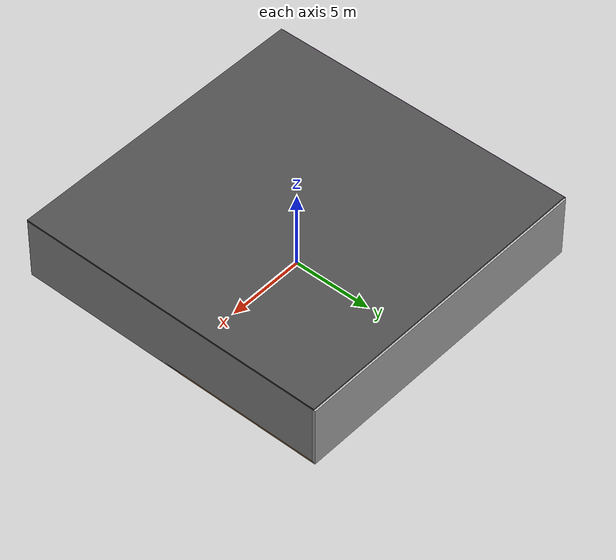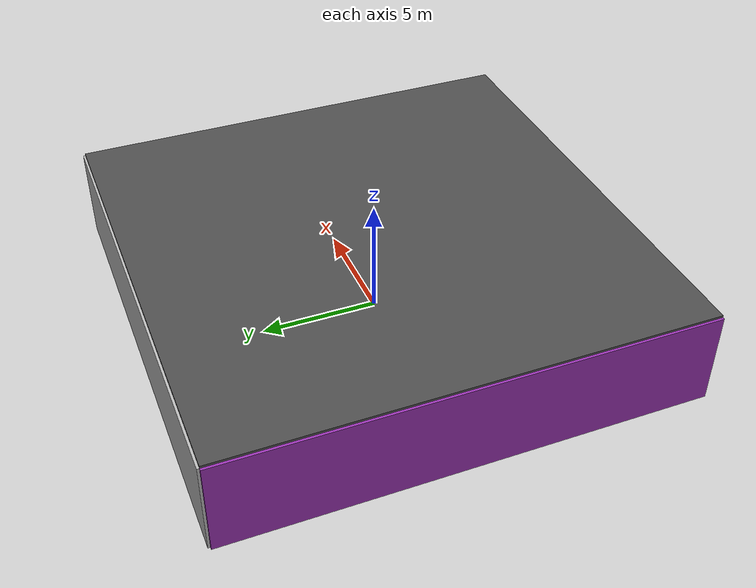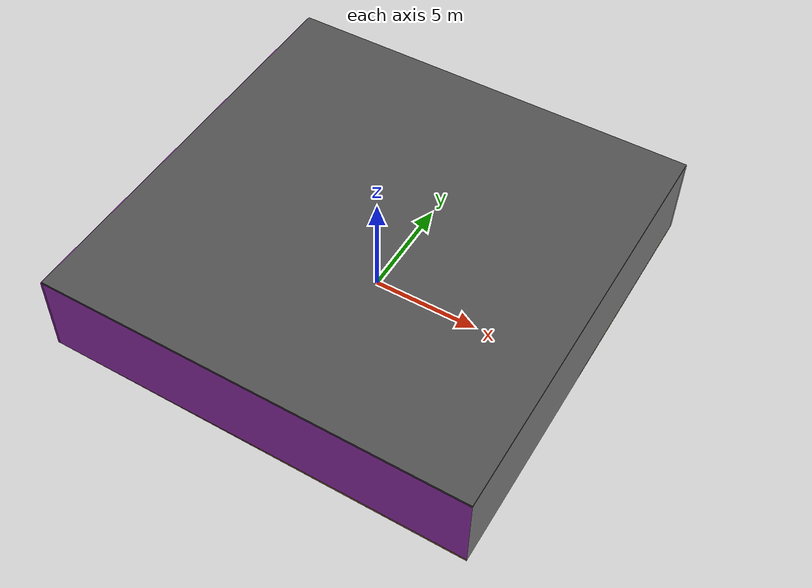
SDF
<sdf version="1.4">
 <world name="default">
  <physics type="ode">
   <max_step_size>0.001</max_step_size>
   <real_time_factor>1</real_time_factor>
   <real_time_update_rate>1000</real_time_update_rate>
   <gravity>0 0 -9.8</gravity>
  </physics>
  <scene><ambient>0.4 0.4 0.4 1</ambient><background>0.7 0.7 0.7 1</background><shadows>1</shadows></scene>
  <model name="Surrounding">
   <static>1</static>
   <link name="Ceiling">
    <collision name="Ceiling_Collision"><geometry><box><size>20 20 0.1</size></box></geometry></collision>
    <visual name="Ceiling_Visual">
     <geometry><box><size>20 20 0.1</size></box></geometry>
     <material>
      <script><uri>file://media/materials/scripts/gazebo.material</uri><name>Gazebo/Road</name></script>
     </material>
    </visual>
    <pose>0 0 4.05 0 0 0</pose>
   </link>
   <link name="Wall_South">
    <collision name="Wall_South_Collision">
     <geometry><box><size>20 0 4</size></box></geometry>
     <pose>0 0 2 0 -0 0</pose>
    </collision>
    <visual name="Wall_South_Visual">
     <pose>0 0 2 0 -0 0</pose>
     <geometry><box><size>20 0 4</size></box></geometry>
     <material>
      <script><uri>file://media/materials/scripts/gazebo.material</uri><name>Gazebo/Purple</name></script>
     </material>
    </visual>
    <velocity_decay><linear>0</linear><angular>0</angular></velocity_decay>
    <pose>0 -10 0 0 -0 0</pose>
   </link>
   <link name="Wall_East">
    <collision name="Wall_21_Collision">
     <geometry><box><size>20 0 4</size></box></geometry>
     <pose>0 0 2 0 -0 0</pose>
    </collision>
    <visual name="Wall_21_Visual">
     <pose>0 0 2 0 -0 0</pose>
     <geometry><box><size>20 0 4</size></box></geometry>
     <material>
      <script><uri>file://media/materials/scripts/gazebo.material</uri><name>Gazebo/GreyGradientSky</name></script>
     </material>
    </visual>
    <velocity_decay><linear>0</linear><angular>0</angular></velocity_decay>
    <pose>10 0 0 0 -0 1.5708</pose>
   </link>
   <link name="Wall_North">
    <collision name="Wall_22_Collision">
     <geometry><box><size>20 0.2 4</size></box></geometry>
     <pose>0 0 2 0 -0 0</pose>
    </collision>
    <visual name="Wall_22_Visual">
     <pose>0 0 2 0 -0 0</pose>
     <geometry><box><size>20 0.2 4</size></box></geometry>
     <material>
      <script><uri>file://media/materials/scripts/gazebo.material</uri><name>Gazebo/LightOff</name></script>
     </material>
    </visual>
    <velocity_decay><linear>0</linear><angular>0</angular></velocity_decay>
    <pose>0 10 0 0 -0 0</pose>
   </link>
   <link name="Wall_West">
    <collision name="Wall_23_Collision">
     <geometry><box><size>20 0.2 4</size></box></geometry>
     <pose>0 0 2 0 -0 0</pose>
    </collision>
    <visual name="Wall_23_Visual">
     <pose>0 0 2 0 -0 0</pose>
     <geometry><box><size>20 0.2 4</size></box></geometry>
     <material>
      <script><uri>file://media/materials/scripts/gazebo.material</uri><name>Gazebo/PurpleGlow</name></script>
     </material>
    </visual>
    <velocity_decay><linear>0</linear><angular>0</angular></velocity_decay>
    <pose>-10 0 0 0 0 -1.5708</pose>
   </link>
   <link name="Ground_link">
    <collision name="collision">
     <pose>0 0 .05 0 -0 0</pose>
     <geometry><box><size>20 20 0.1</size></box></geometry>
    </collision>
    <visual name="visual">
     <pose>0 0 .05 0 -0 0</pose>
     <geometry><box><size>20 20 0.1</size></box></geometry>
     <material>
      <script><uri>file://media/materials/scripts/gazebo.material</uri><name>Gazebo/WoodFloor</name></script>
     </material>
    </visual>
   </link>
   <static>1</static>
  </model>
  <spherical_coordinates>
   <surface_model>EARTH_WGS84</surface_model>
   <latitude_deg>0</latitude_deg>
   <longitude_deg>0</longitude_deg>
   <elevation>0</elevation>
   <heading_deg>0</heading_deg>
  </spherical_coordinates>
  <light name="lightball_0" type="diffuse">
   <diffuse>0.8 0.8 0.8 1</diffuse>
   <specular>0.2 0.2 0.2 1</specular>
   <attenuation>
    <range>100</range>
    <constant>0.7</constant>
    <linear>0.01</linear>
    <quadratic>0.001</quadratic>
   </attenuation>
   <direction>-0.5 0.1 -0.9</direction>
   <pose>5.0667510243 9.22158220048 1.36799468502 0 0 0</pose>
  </light>
  <light name="lightball_1" type="diffuse">
   <diffuse>0.8 0.8 0.8 1</diffuse>
   <specular>0.2 0.2 0.2 1</specular>
   <attenuation>
    <range>100</range>
    <constant>0.7</constant>
    <linear>0.01</linear>
    <quadratic>0.001</quadratic>
   </attenuation>
   <direction>-0.5 0.1 -0.9</direction>
   <pose>-7.09639602787 -3.00268941028 2.03005280562 0 0 0</pose>
  </light>
  <light name="lightball_2" type="diffuse">
   <diffuse>0.8 0.8 0.8 1</diffuse>
   <specular>0.2 0.2 0.2 1</specular>
   <attenuation>
    <range>100</range>
    <constant>0.7</constant>
    <linear>0.01</linear>
    <quadratic>0.001</quadratic>
   </attenuation>
   <direction>-0.5 0.1 -0.9</direction>
   <pose>2.61605694252 -0.876891784245 1.18086487368 0 0 0</pose>
  </light>
  <light name="lightball_3" type="diffuse">
   <diffuse>0.8 0.8 0.8 1</diffuse>
   <specular>0.2 0.2 0.2 1</specular>
   <attenuation>
    <range>100</range>
    <constant>0.7</constant>
    <linear>0.01</linear>
    <quadratic>0.001</quadratic>
   </attenuation>
   <direction>-0.5 0.1 -0.9</direction>
   <pose>5.72169829614 8.72598833135 2.92618303812 0 0 0</pose>
  </light>
  <light name="lightball_4" type="diffuse">
   <diffuse>0.8 0.8 0.8 1</diffuse>
   <specular>0.2 0.2 0.2 1</specular>
   <attenuation>
    <range>100</range>
    <constant>0.7</constant>
    <linear>0.01</linear>
    <quadratic>0.001</quadratic>
   </attenuation>
   <direction>-0.5 0.1 -0.9</direction>
   <pose>5.86165417082 -6.72150430657 3.50821948709 0 0 0</pose>
  </light>
  <light name="lightball_5" type="diffuse">
   <diffuse>0.8 0.8 0.8 1</diffuse>
   <specular>0.2 0.2 0.2 1</specular>
   <attenuation>
    <range>100</range>
    <constant>0.7</constant>
    <linear>0.01</linear>
    <quadratic>0.001</quadratic>
   </attenuation>
   <direction>-0.5 0.1 -0.9</direction>
   <pose>-1.48863083895 3.23333317712 3.30488738187 0 0 0</pose>
  </light>
  <light name="lightball_6" type="diffuse">
   <diffuse>0.8 0.8 0.8 1</diffuse>
   <specular>0.2 0.2 0.2 1</specular>
   <attenuation>
    <range>100</range>
    <constant>0.7</constant>
    <linear>0.01</linear>
    <quadratic>0.001</quadratic>
   </attenuation>
   <direction>-0.5 0.1 -0.9</direction>
   <pose>-4.70960502346 -2.55206546019 2.8482819912 0 0 0</pose>
  </light>
  <light name="lightball_7" type="diffuse">
   <diffuse>0.8 0.8 0.8 1</diffuse>
   <specular>0.2 0.2 0.2 1</specular>
   <attenuation>
    <range>100</range>
    <constant>0.7</constant>
    <linear>0.01</linear>
    <quadratic>0.001</quadratic>
   </attenuation>
   <direction>-0.5 0.1 -0.9</direction>
   <pose>-3.27416706373 -8.37998689778 1.68165501504 0 0 0</pose>
  </light>
  <include>
   <uri>model://construction_cone</uri>
   <pose>-4.30492048906 -7.69654153796 0 0 0 1.6344371163</pose>
  </include>
  <include>
   <uri>model://textured_shapes</uri>
   <pose>0.983457266486 -3.70836242282 0 0 0 2.1938995867</pose>
  </include>
  <include>
   <uri>model://robocup_3Dsim_goal</uri>
   <pose>1.93899376856 3.70655908193 0 0 0 1.15258023449</pose>
  </include>
 </world>
</sdf>

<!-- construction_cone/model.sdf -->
<sdf version="1.5">
  <model name="Construction Cone">
    <link name="link">
      <collision name="collision">
        <geometry>
          <mesh>
            <scale>10 10 10</scale>
            <uri>file://isr-testbed/construction_cone/meshes/construction_cone.dae</uri>
          </mesh>
        </geometry>
      </collision>
      <visual name="visual">
        <geometry>
          <mesh>
            <scale>10 10 10</scale>
            <uri>file://isr-testbed/construction_cone/meshes/construction_cone.dae</uri>
          </mesh>
        </geometry>
      </visual>
    </link>
  </model>
</sdf>

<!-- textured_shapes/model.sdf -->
<sdf version="1.6">
  <model name="textured_shapes">
    <pose>0 0 0.5 0 0 0</pose>
    <link name="box">
      <pose>0 -1.5 0 0 0 0</pose>
      <collision name="collision">
        <geometry>
          <box>
            <size>1 1 1</size>
          </box>
        </geometry>
      </collision>
      <visual name="visual">
        <geometry>
          <box>
            <size>1 1 1</size>
          </box>
        </geometry>
        <material>
          <script>
            <uri>model://../model_source/models/textured_shapes/materials/scripts</uri>
            <uri>model://../model_source/models/textured_shapes/materials/textures</uri>
            <name>TexturedShape/Squares</name>
          </script>
        </material>
      </visual>
    </link>
    <link name="sphere">
      <collision name="collision">
        <geometry>
          <sphere>
            <radius>0.5</radius>
          </sphere>
        </geometry>
      </collision>
      <visual name="visual">
        <geometry>
          <sphere>
            <radius>0.5</radius>
          </sphere>
        </geometry>
        <material>
          <script>
            <uri>model://../model_source/models/textured_shapes/materials/scripts</uri>
            <uri>model://../model_source/models/textured_shapes/materials/textures</uri>
            <name>TexturedShape/Squares</name>
          </script>
        </material>
      </visual>
    </link>
    <link name="cylinder">
      <pose>0 1.5 0 0 0 0</pose>
      <collision name="collision">
        <geometry>
          <cylinder>
            <radius>0.5</radius>
            <length>1</length>
          </cylinder>
        </geometry>
      </collision>
      <visual name="visual">
        <geometry>
          <cylinder>
            <radius>0.5</radius>
            <length>1</length>
          </cylinder>
        </geometry>
        <material>
          <script>
            <uri>model://../model_source/models/textured_shapes/materials/scripts</uri>
            <uri>model://../model_source/models/textured_shapes/materials/textures</uri>
            <name>TexturedShape/Squares</name>
          </script>
        </material>
      </visual>
    </link>
  </model>
</sdf>

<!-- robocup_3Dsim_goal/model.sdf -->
<sdf version="1.5">
  <model name="robocup_3d_goal">
    <static>true</static>
    <link name="left_post">
      <pose>0 1.05 0.45 0 0 0</pose>
      <collision name="collision">
        <geometry>
          <cylinder>
            <radius>0.05</radius>
            <length>0.9</length>
          </cylinder>
        </geometry>
      </collision>
      <visual name="visual">
        <geometry>
          <cylinder>
            <radius>0.05</radius>
            <length>0.9</length>
          </cylinder>
        </geometry>
        <material>
          <script>
            <uri>file://media/materials/scripts/gazebo.material</uri>
            <name>Gazebo/ZincYellow</name>
          </script>
        </material>
      </visual>
    </link>
    <link name="left_support_horiz_lower">
      <pose>0.30 1.05 0.01 0 0 0</pose>
      <collision name="collision">
        <geometry>
          <box>
            <size>0.50 0.02 0.02</size>
          </box>
        </geometry>
      </collision>
      <visual name="visual">
        <geometry>
          <box>
            <size>0.50 0.02 0.02</size>
          </box>
        </geometry>
        <material>
          <script>
            <uri>file://media/materials/scripts/gazebo.material</uri>
            <name>Gazebo/White</name>
          </script>
        </material>
      </visual>
    </link>
    <link name="left_support_horiz_upper">
      <pose>0.30 1.05 0.79 0 0 0</pose>
      <collision name="collision">
        <geometry>
          <box>
            <size>0.50 0.02 0.02</size>
          </box>
        </geometry>
      </collision>
      <visual name="visual">
        <geometry>
          <box>
            <size>0.50 0.02 0.02</size>
          </box>
        </geometry>
        <material>
          <script>
            <uri>file://media/materials/scripts/gazebo.material</uri>
            <name>Gazebo/White</name>
          </script>
        </material>
      </visual>
    </link>
    <link name="left_support_vertical">
      <pose>0.56 1.05 0.4 0 1.5708 0</pose>
      <collision name="collision">
        <geometry>
          <box>
            <size>0.80 0.02 0.02</size>
          </box>
        </geometry>
      </collision>
      <visual name="visual">
        <geometry>
          <box>
            <size>0.80 0.02 0.02</size>
          </box>
        </geometry>
        <material>
          <script>
            <uri>file://media/materials/scripts/gazebo.material</uri>
            <name>Gazebo/White</name>
          </script>
        </material>
      </visual>
    </link>
    <link name="right_support_horiz_lower">
      <pose>0.30 -1.05 0.01 0 0 0</pose>
      <collision name="collision">
        <geometry>
          <box>
            <size>0.50 0.02 0.02</size>
          </box>
        </geometry>
      </collision>
      <visual name="visual">
        <geometry>
          <box>
            <size>0.50 0.02 0.02</size>
          </box>
        </geometry>
        <material>
          <script>
            <uri>file://media/materials/scripts/gazebo.material</uri>
            <name>Gazebo/White</name>
          </script>
        </material>
      </visual>
    </link>
    <link name="right_support_horiz_upper">
      <pose>0.30 -1.05 0.79 0 0 0</pose>
      <collision name="collision">
        <geometry>
          <box>
            <size>0.50 0.02 0.02</size>
          </box>
        </geometry>
      </collision>
      <visual name="visual">
        <geometry>
          <box>
            <size>0.50 0.02 0.02</size>
          </box>
        </geometry>
        <material>
          <script>
            <uri>file://media/materials/scripts/gazebo.material</uri>
            <name>Gazebo/White</name>
          </script>
        </material>
      </visual>
    </link>
    <link name="right_support_vertical">
      <pose>0.56 -1.05 0.4 0 1.5708 0</pose>
      <collision name="collision">
        <geometry>
          <box>
            <size>0.80 0.02 0.02</size>
          </box>
        </geometry>
      </collision>
      <visual name="visual">
        <geometry>
          <box>
            <size>0.80 0.02 0.02</size>
          </box>
        </geometry>
        <material>
          <script>
            <uri>file://media/materials/scripts/gazebo.material</uri>
            <name>Gazebo/White</name>
          </script>
        </material>
      </visual>
    </link>
    <link name="center_support_horiz_lower">
      <pose>0.56 0 0.01 0 1.5708 0</pose>
      <collision name="collision">
        <geometry>
          <box>
            <size>0.02 2.08 0.02</size>
          </box>
        </geometry>
      </collision>
      <visual name="visual">
        <geometry>
          <box>
            <size>0.02 2.08 0.02</size>
          </box>
        </geometry>
        <material>
          <script>
            <uri>file://media/materials/scripts/gazebo.material</uri>
            <name>Gazebo/White</name>
          </script>
        </material>
      </visual>
    </link>
    <link name="center_support_horiz_upper">
      <pose>0.56 0 0.79 0 1.5708 0</pose>
      <collision name="collision">
        <geometry>
          <box>
            <size>0.02 2.08 0.02</size>
          </box>
        </geometry>
      </collision>
      <visual name="visual">
        <geometry>
          <box>
            <size>0.02 2.08 0.02</size>
          </box>
        </geometry>
        <material>
          <script>
            <uri>file://media/materials/scripts/gazebo.material</uri>
            <name>Gazebo/White</name>
          </script>
        </material>
      </visual>
    </link>
    <link name="right_post">
      <pose>0 -1.05 0.45 0 0 0</pose>
      <collision name="collision">
        <geometry>
          <cylinder>
            <radius>0.05</radius>
            <length>0.9</length>
          </cylinder>
        </geometry>
      </collision>
      <visual name="visual">
        <geometry>
          <cylinder>
            <radius>0.05</radius>
            <length>0.9</length>
          </cylinder>
        </geometry>
        <material>
          <script>
            <uri>file://media/materials/scripts/gazebo.material</uri>
            <name>Gazebo/ZincYellow</name>
          </script>
        </material>
      </visual>
    </link>
    <link name="crossbar">
      <pose>0 0 0.85 1.57 1.57 0</pose>
      <collision name="collision">
        <geometry>
          <cylinder>
            <radius>0.05</radius>
            <length>2.0</length>
          </cylinder>
        </geometry>
      </collision>
      <visual name="visual">
        <geometry>
          <cylinder>
            <radius>0.05</radius>
            <length>2.0</length>
          </cylinder>
        </geometry>
        <material>
          <script>
            <uri>file://media/materials/scripts/gazebo.material</uri>
            <name>Gazebo/ZincYellow</name>
          </script>
        </material>
      </visual>
    </link>
    <link name="center_net">
      <pose>0.56 0 0.40 0 0 0</pose>
      <collision name="collision">
        <geometry>
          <box>
            <size>0.01 2.1 0.80</size>
          </box>
        </geometry>
      </collision>
      <visual name="visual">
        <geometry>
          <box>
            <size>0.01 2.1 0.80</size>
          </box>
        </geometry>
        <material>
          <script>
            <uri>model://../model_source/models/robocup09_spl_field/materials/scripts/</uri>
            <uri>model://../model_source/models/robocup09_spl_field/materials/textures/</uri>
            <name>RoboCup/Net</name>
          </script>
        </material>
      </visual>
    </link>
    <link name="left_net">
      <pose>0.30 1.05 0.40 0 0 0</pose>
      <collision name="collision">
        <geometry>
          <box>
            <size>0.50 0.01 0.76</size>
          </box>
        </geometry>
      </collision>
      <visual name="visual">
        <geometry>
          <box>
            <size>0.50 0.01 0.76</size>
          </box>
        </geometry>
        <material>
          <script>
            <uri>model://../model_source/models/robocup09_spl_field/materials/scripts/</uri>
            <uri>model://../model_source/models/robocup09_spl_field/materials/textures/</uri>
            <name>RoboCup/Net</name>
          </script>
        </material>
      </visual>
    </link>
    <link name="right_net">
      <pose>0.30 -1.05 0.40 0 0 0</pose>
      <collision name="collision">
        <geometry>
          <box>
            <size>0.50 0.01 0.76</size>
          </box>
        </geometry>
      </collision>
      <visual name="visual">
        <geometry>
          <box>
            <size>0.50 0.01 0.76</size>
          </box>
        </geometry>
        <material>
          <script>
            <uri>model://../model_source/models/robocup09_spl_field/materials/scripts/</uri>
            <uri>model://../model_source/models/robocup09_spl_field/materials/textures/</uri>
            <name>RoboCup/Net</name>
          </script>
        </material>
      </visual>
    </link>
  </model>
</sdf>
